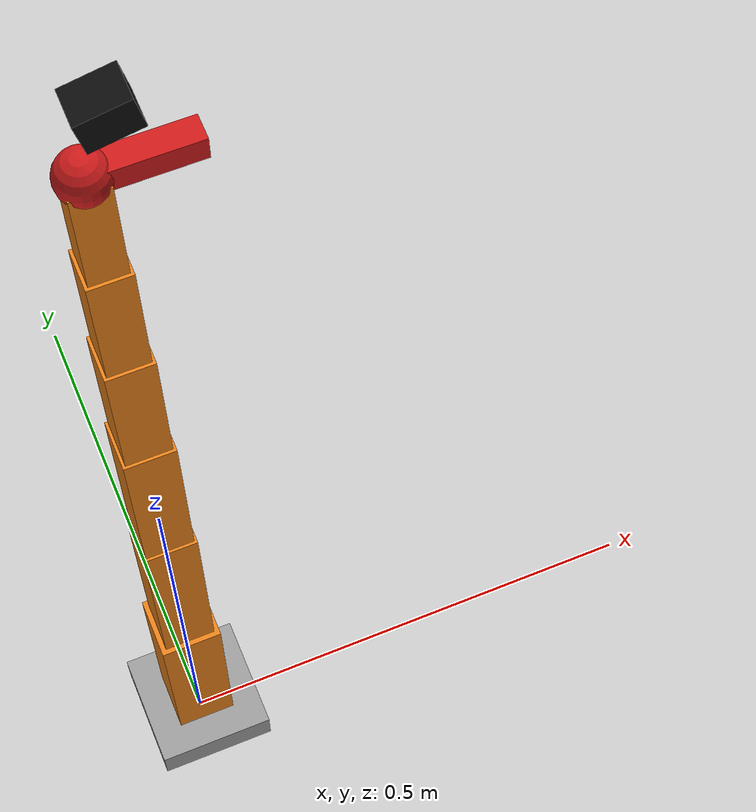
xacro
<?xml version="1.0"?>
<robot name="mm_arm" xmlns:xacro="http://www.ros.org/wiki/xacro">
  <xacro:arg name="prefix" default="mm_arm_"/>
  <xacro:arg name="scale" default="1.0"/>
  <xacro:arg name="controllers_file" default="$(find-pkg-share mm_bringup)/config/arm_controllers.yaml"/>
  <xacro:arg name="enable_camera" default="true"/>
  <xacro:property name="prefix" value="$(arg prefix)"/>
  <xacro:property name="scale" value="$(arg scale)"/>
  <xacro:property name="controllers_file" value="$(arg controllers_file)"/>
  <xacro:property name="enable_camera" value="$(arg enable_camera)"/>

  <!-- Geometría provisional; usar scale para iterar rápidamente. -->
  <xacro:property name="link1_len" value="${0.22 * scale}"/>
  <xacro:property name="link2_len" value="${0.22 * scale}"/>
  <xacro:property name="link3_len" value="${0.18 * scale}"/>
  <xacro:property name="link4_len" value="${0.14 * scale}"/>
  <xacro:property name="link5_len" value="${0.12 * scale}"/>
  <xacro:property name="link6_len" value="${0.10 * scale}"/>

  <xacro:macro name="simple_inertial" params="mass inertia origin_z">
    <inertial>
      <origin xyz="0 0 ${origin_z}" rpy="0 0 0"/>
      <mass value="${mass}"/>
      <inertia ixx="${inertia}" ixy="0" ixz="0" iyy="${inertia}" iyz="0" izz="${inertia}"/>
    </inertial>
  </xacro:macro>

  <link name="${prefix}root_link"/>

  <link name="${prefix}base_link">
    <xacro:simple_inertial mass="3.0" inertia="0.02" origin_z="0.02"/>
    <visual>
      <origin xyz="0 0 0.02" rpy="0 0 0"/>
      <geometry>
        <box size="0.12 0.12 0.04"/>
      </geometry>
      <material name="ArmGray">
        <color rgba="0.6 0.6 0.6 1.0"/>
      </material>
    </visual>
    <collision>
      <origin xyz="0 0 0.02" rpy="0 0 0"/>
      <geometry>
        <box size="0.12 0.12 0.04"/>
      </geometry>
    </collision>
  </link>

  <joint name="${prefix}root_joint" type="fixed">
    <parent link="${prefix}root_link"/>
    <child link="${prefix}base_link"/>
    <origin xyz="0 0 0" rpy="0 0 0"/>
  </joint>

  <link name="${prefix}link_1">
    <xacro:simple_inertial mass="1.2" inertia="0.01" origin_z="${link1_len / 2.0}"/>
    <visual>
      <origin xyz="0 0 ${link1_len / 2.0}" rpy="0 0 0"/>
      <geometry>
        <box size="0.06 0.06 ${link1_len}"/>
      </geometry>
      <material name="ArmOrange">
        <color rgba="0.9 0.5 0.1 1.0"/>
      </material>
    </visual>
    <collision>
      <origin xyz="0 0 ${link1_len / 2.0}" rpy="0 0 0"/>
      <geometry>
        <box size="0.06 0.06 ${link1_len}"/>
      </geometry>
    </collision>
  </link>

  <joint name="${prefix}shoulder_pan_joint" type="revolute">
    <parent link="${prefix}base_link"/>
    <child link="${prefix}link_1"/>
    <origin xyz="0 0 0.04" rpy="0 0 0"/>
    <axis xyz="0 0 1"/>
    <limit lower="${-pi}" upper="${pi}" effort="30" velocity="2"/>
  </joint>

  <link name="${prefix}link_2">
    <xacro:simple_inertial mass="1.1" inertia="0.01" origin_z="${link2_len / 2.0}"/>
    <visual>
      <origin xyz="0 0 ${link2_len / 2.0}" rpy="0 0 0"/>
      <geometry>
        <box size="0.05 0.05 ${link2_len}"/>
      </geometry>
      <material name="ArmOrange"/>
    </visual>
    <collision>
      <origin xyz="0 0 ${link2_len / 2.0}" rpy="0 0 0"/>
      <geometry>
        <box size="0.05 0.05 ${link2_len}"/>
      </geometry>
    </collision>
  </link>

  <joint name="${prefix}shoulder_lift_joint" type="revolute">
    <parent link="${prefix}link_1"/>
    <child link="${prefix}link_2"/>
    <origin xyz="0 0 ${link1_len}" rpy="0 0 0"/>
    <axis xyz="0 1 0"/>
    <limit lower="${-pi/2}" upper="${pi/2}" effort="30" velocity="2"/>
  </joint>

  <link name="${prefix}link_3">
    <xacro:simple_inertial mass="1.0" inertia="0.008" origin_z="${link3_len / 2.0}"/>
    <visual>
      <origin xyz="0 0 ${link3_len / 2.0}" rpy="0 0 0"/>
      <geometry>
        <box size="0.045 0.045 ${link3_len}"/>
      </geometry>
      <material name="ArmOrange"/>
    </visual>
    <collision>
      <origin xyz="0 0 ${link3_len / 2.0}" rpy="0 0 0"/>
      <geometry>
        <box size="0.045 0.045 ${link3_len}"/>
      </geometry>
    </collision>
  </link>

  <joint name="${prefix}elbow_joint" type="revolute">
    <parent link="${prefix}link_2"/>
    <child link="${prefix}link_3"/>
    <origin xyz="0 0 ${link2_len}" rpy="0 0 0"/>
    <axis xyz="0 1 0"/>
    <limit lower="${-pi/2}" upper="${pi/2}" effort="25" velocity="2"/>
  </joint>

  <link name="${prefix}link_4">
    <xacro:simple_inertial mass="0.8" inertia="0.006" origin_z="${link4_len / 2.0}"/>
    <visual>
      <origin xyz="0 0 ${link4_len / 2.0}" rpy="0 0 0"/>
      <geometry>
        <box size="0.04 0.04 ${link4_len}"/>
      </geometry>
      <material name="ArmOrange"/>
    </visual>
    <collision>
      <origin xyz="0 0 ${link4_len / 2.0}" rpy="0 0 0"/>
      <geometry>
        <box size="0.04 0.04 ${link4_len}"/>
      </geometry>
    </collision>
  </link>

  <joint name="${prefix}wrist_1_joint" type="revolute">
    <parent link="${prefix}link_3"/>
    <child link="${prefix}link_4"/>
    <origin xyz="0 0 ${link3_len}" rpy="0 0 0"/>
    <axis xyz="1 0 0"/>
    <limit lower="${-pi}" upper="${pi}" effort="20" velocity="2"/>
  </joint>

  <link name="${prefix}link_5">
    <xacro:simple_inertial mass="0.7" inertia="0.004" origin_z="${link5_len / 2.0}"/>
    <visual>
      <origin xyz="0 0 ${link5_len / 2.0}" rpy="0 0 0"/>
      <geometry>
        <box size="0.035 0.035 ${link5_len}"/>
      </geometry>
      <material name="ArmOrange"/>
    </visual>
    <collision>
      <origin xyz="0 0 ${link5_len / 2.0}" rpy="0 0 0"/>
      <geometry>
        <box size="0.035 0.035 ${link5_len}"/>
      </geometry>
    </collision>
  </link>

  <joint name="${prefix}wrist_2_joint" type="revolute">
    <parent link="${prefix}link_4"/>
    <child link="${prefix}link_5"/>
    <origin xyz="0 0 ${link4_len}" rpy="0 0 0"/>
    <axis xyz="0 1 0"/>
    <limit lower="${-pi}" upper="${pi}" effort="20" velocity="2"/>
  </joint>

  <link name="${prefix}link_6">
    <xacro:simple_inertial mass="0.6" inertia="0.003" origin_z="${link6_len / 2.0}"/>
    <visual>
      <origin xyz="0 0 ${link6_len / 2.0}" rpy="0 0 0"/>
      <geometry>
        <box size="0.03 0.03 ${link6_len}"/>
      </geometry>
      <material name="ArmOrange"/>
    </visual>
    <collision>
      <origin xyz="0 0 ${link6_len / 2.0}" rpy="0 0 0"/>
      <geometry>
        <box size="0.03 0.03 ${link6_len}"/>
      </geometry>
    </collision>
  </link>

  <joint name="${prefix}wrist_3_joint" type="revolute">
    <parent link="${prefix}link_5"/>
    <child link="${prefix}link_6"/>
    <origin xyz="0 0 ${link5_len}" rpy="0 0 0"/>
    <axis xyz="1 0 0"/>
    <limit lower="${-pi}" upper="${pi}" effort="15" velocity="3"/>
  </joint>

  <link name="${prefix}tool0">
    <xacro:simple_inertial mass="0.2" inertia="0.0005" origin_z="0.0"/>
    <visual>
      <geometry>
        <sphere radius="0.02"/>
      </geometry>
      <material name="ToolRed">
        <color rgba="0.8 0.1 0.1 1.0"/>
      </material>
    </visual>
    <collision>
      <geometry>
        <sphere radius="0.02"/>
      </geometry>
    </collision>
  </link>

  <joint name="${prefix}tool_joint" type="fixed">
    <parent link="${prefix}link_6"/>
    <child link="${prefix}tool0"/>
    <origin xyz="0 0 ${link6_len}" rpy="0 0 0"/>
  </joint>

  <link name="${prefix}gripper_link">
    <xacro:simple_inertial mass="0.3" inertia="0.0008" origin_z="0.0"/>
    <visual>
      <origin xyz="0.04 0 0" rpy="0 0 0"/>
      <geometry>
        <box size="0.08 0.02 0.02"/>
      </geometry>
      <material name="ToolRed"/>
    </visual>
    <collision>
      <origin xyz="0.04 0 0" rpy="0 0 0"/>
      <geometry>
        <box size="0.08 0.02 0.02"/>
      </geometry>
    </collision>
  </link>

  <joint name="${prefix}gripper_joint" type="fixed">
    <parent link="${prefix}tool0"/>
    <child link="${prefix}gripper_link"/>
    <origin xyz="0 0 0" rpy="0 0 0"/>
  </joint>

  <!-- Sensores montados en el efector final. -->
  <link name="${prefix}ee_camera_link">
    <xacro:simple_inertial mass="0.1" inertia="0.0003" origin_z="0.0"/>
    <visual>
      <geometry>
        <box size="0.04 0.03 0.03"/>
      </geometry>
      <material name="CameraBlack">
        <color rgba="0.05 0.05 0.05 1.0"/>
      </material>
    </visual>
    <collision>
      <geometry>
        <box size="0.04 0.03 0.03"/>
      </geometry>
    </collision>
  </link>

  <joint name="${prefix}ee_camera_joint" type="fixed">
    <parent link="${prefix}tool0"/>
    <child link="${prefix}ee_camera_link"/>
    <origin xyz="0.02 0 0.06" rpy="0 -0.2 0"/>
  </joint>

  <link name="${prefix}ee_imu_link">
    <xacro:simple_inertial mass="0.05" inertia="0.0001" origin_z="0.0"/>
  </link>

  <joint name="${prefix}ee_imu_joint" type="fixed">
    <parent link="${prefix}tool0"/>
    <child link="${prefix}ee_imu_link"/>
    <origin xyz="0 0 0.04" rpy="0 0 0"/>
  </joint>

  <!-- ros2_control para el brazo de 6 GDL (encoders a joint_states). -->
  <ros2_control name="mm_arm_system" type="system">
    <hardware>
      <plugin>gz_ros2_control/GazeboSimSystem</plugin>
    </hardware>

    <joint name="${prefix}shoulder_pan_joint">
      <command_interface name="position"/>
      <state_interface name="position"/>
      <state_interface name="velocity"/>
    </joint>
    <joint name="${prefix}shoulder_lift_joint">
      <command_interface name="position"/>
      <state_interface name="position"/>
      <state_interface name="velocity"/>
    </joint>
    <joint name="${prefix}elbow_joint">
      <command_interface name="position"/>
      <state_interface name="position"/>
      <state_interface name="velocity"/>
    </joint>
    <joint name="${prefix}wrist_1_joint">
      <command_interface name="position"/>
      <state_interface name="position"/>
      <state_interface name="velocity"/>
    </joint>
    <joint name="${prefix}wrist_2_joint">
      <command_interface name="position"/>
      <state_interface name="position"/>
      <state_interface name="velocity"/>
    </joint>
    <joint name="${prefix}wrist_3_joint">
      <command_interface name="position"/>
      <state_interface name="position"/>
      <state_interface name="velocity"/>
    </joint>
  </ros2_control>

  <gazebo>
    <plugin filename="libgz_ros2_control-system.so"
            name="gz_ros2_control::GazeboSimROS2ControlPlugin">
      <ros>
        <namespace>mm_arm</namespace>
      </ros>
      <parameters>${controllers_file}</parameters>
      <controller_manager_name>controller_manager</controller_manager_name>
    </plugin>
  </gazebo>

  <xacro:if value="${enable_camera}">
    <gazebo reference="${prefix}ee_camera_link">
      <sensor name="ee_camera" type="camera">
        <topic>/mm_arm/camera</topic>
        <update_rate>30</update_rate>
        <always_on>1</always_on>
        <visualize>true</visualize>
        <camera>
          <horizontal_fov>1.047</horizontal_fov>
          <image>
            <width>640</width>
            <height>480</height>
            <format>R8G8B8</format>
          </image>
          <clip>
            <near>0.05</near>
            <far>20.0</far>
          </clip>
        </camera>
      </sensor>
    </gazebo>
  </xacro:if>

  <gazebo reference="${prefix}ee_imu_link">
    <sensor name="ee_imu" type="imu">
      <topic>/mm_arm/imu</topic>
      <update_rate>100</update_rate>
      <always_on>1</always_on>
    </sensor>
  </gazebo>
</robot>
